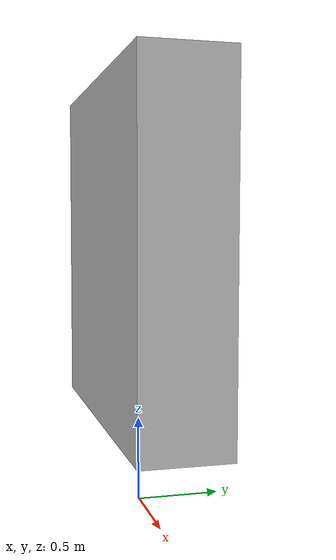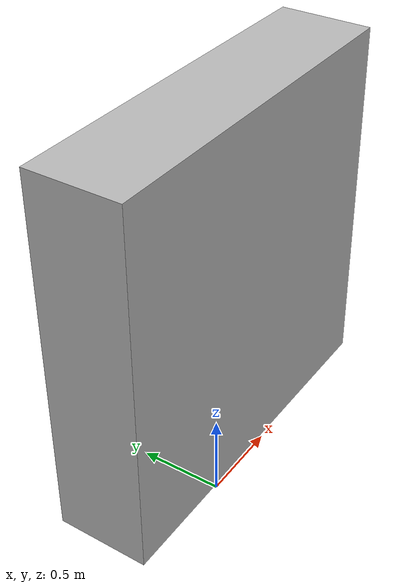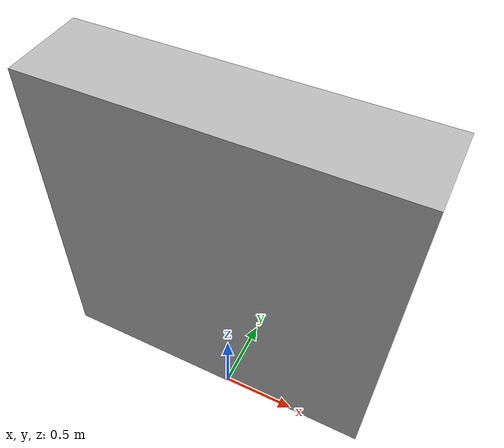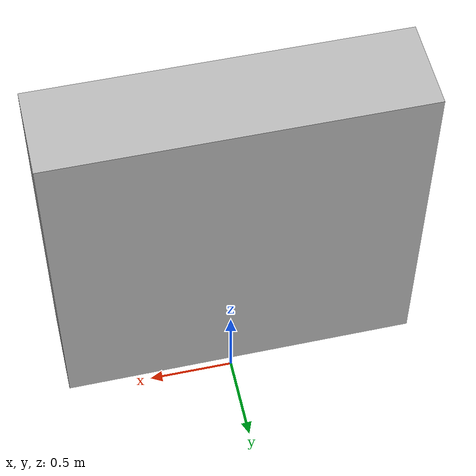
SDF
<?xml version="1.0" ?>
<sdf version="1.5">
  <model name="brick_box_3x1x3">
    <static>true</static>
    <link name="chassis">
      <pose>0 0 1.5 0 0 0</pose>
      <collision name="collision">
        <geometry>
          <box>
            <size>2.0 0.5 2.0</size>
          </box>
        </geometry>
      </collision>
      <visual name="visual">
        <geometry>
          <mesh>
            <uri>model://brick_box_3x1x3/meshes/simple_box.dae</uri>
            <scale>2.0 0.5 2.0</scale>
          </mesh>
        </geometry>
        <material>
          <script>
            <uri>model://brick_box_3x1x3/materials/scripts</uri>
            <uri>model://brick_box_3x1x3/materials/textures</uri>
            <name>BrickBox/Diffuse</name>
          </script>
        </material>
      </visual>
    </link>
  </model>
</sdf>
